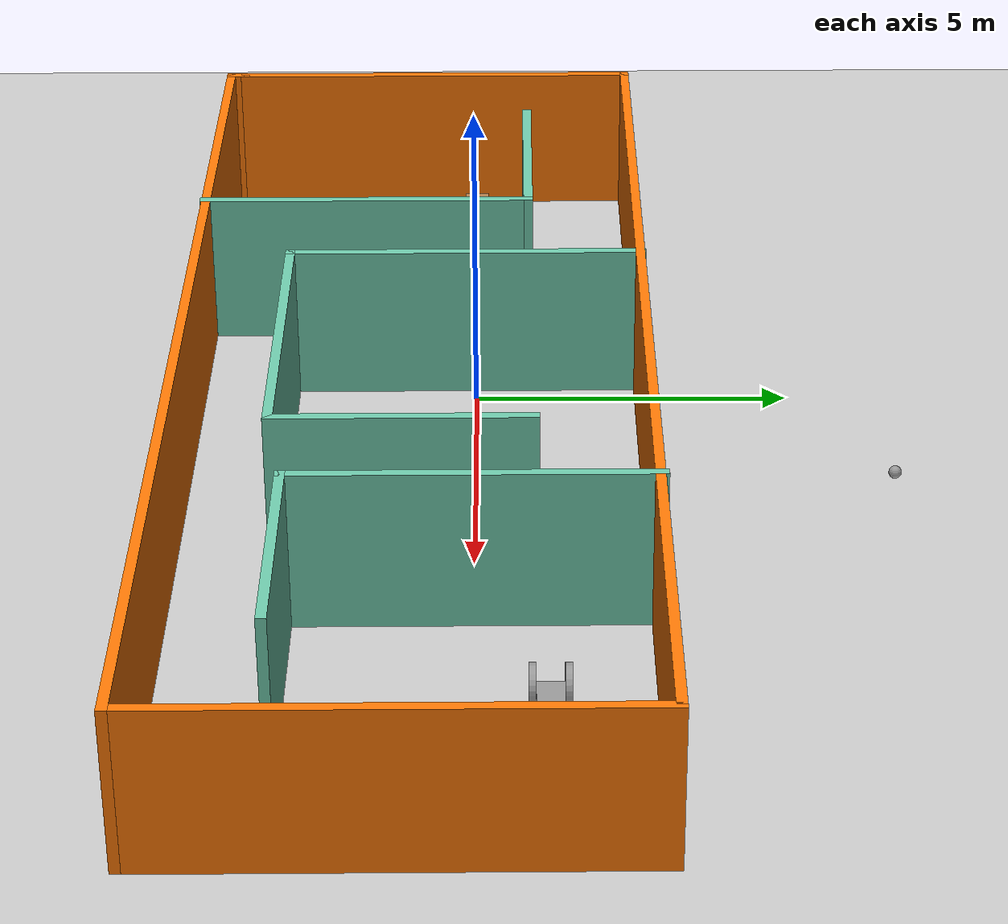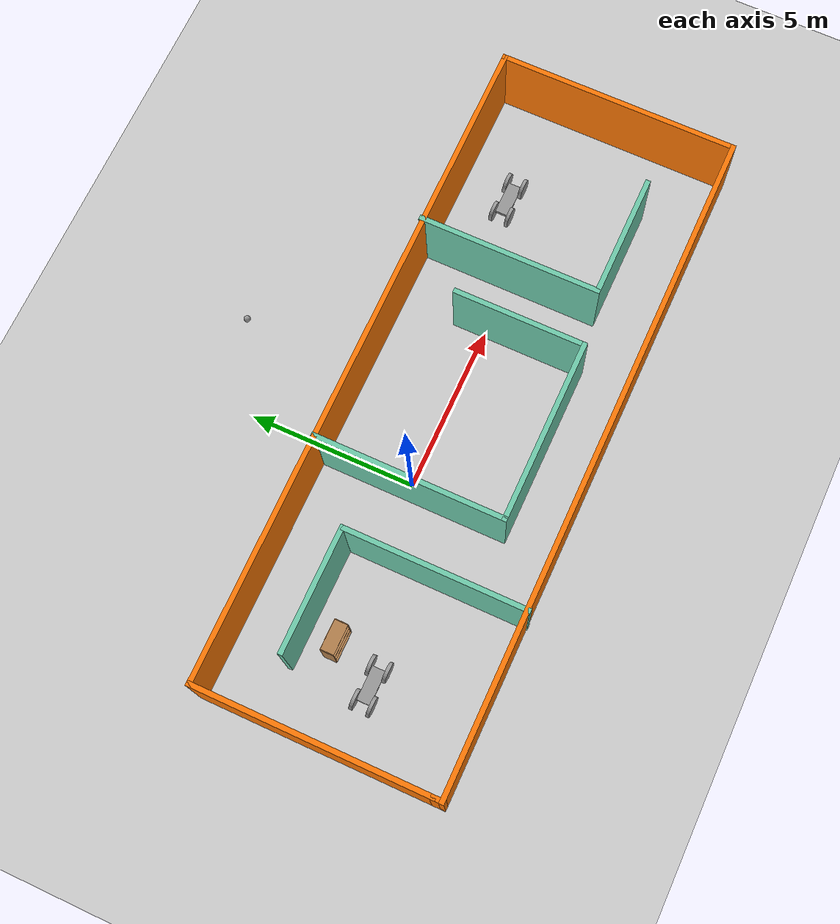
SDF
<sdf version="1.6">
 <world name="default">
  <plugin name="welcome_message" filename="libwelcome_message.so"/>
  <light name="sun" type="directional">
   <pose>0 0 10 0 -0 0</pose>
   <diffuse>0.8 0.8 0.8 1</diffuse>
   <specular>0.2 0.2 0.2 1</specular>
   <attenuation>
    <range>1000</range>
    <constant>0.9</constant>
    <linear>0.01</linear>
    <quadratic>0.001</quadratic>
   </attenuation>
   <direction>-0.5 0.1 -0.9</direction>
  </light>
  <model name="ground_plane">
   <static>1</static>
   <link name="link">
    <collision name="collision">
     <geometry><plane><normal>0 0 1</normal><size>100 100</size></plane></geometry>
     <surface>
      <contact><collide_bitmask>65535</collide_bitmask></contact>
      <friction><ode><mu>100</mu><mu2>50</mu2></ode></friction>
     </surface>
    </collision>
    <visual name="visual">
     <cast_shadows>0</cast_shadows>
     <geometry><plane><normal>0 0 1</normal><size>100 100</size></plane></geometry>
     <material>
      <script><uri>file://media/materials/scripts/gazebo.material</uri><name>Gazebo/Grey</name></script>
     </material>
    </visual>
   </link>
  </model>
  <gravity>0 0 -9.8</gravity>
  <magnetic_field>6e-06 2.3e-05 -4.2e-05</magnetic_field>
  <atmosphere type="adiabatic"/>
  <physics name="default_physics" default="0" type="ode">
   <max_step_size>0.001</max_step_size>
   <real_time_factor>1</real_time_factor>
   <real_time_update_rate>1000</real_time_update_rate>
  </physics>
  <scene><ambient>0.4 0.4 0.4 1</ambient><background>0.7 0.7 0.7 1</background><shadows>1</shadows></scene>
  <spherical_coordinates>
   <surface_model>EARTH_WGS84</surface_model>
   <latitude_deg>0</latitude_deg>
   <longitude_deg>0</longitude_deg>
   <elevation>0</elevation>
   <heading_deg>0</heading_deg>
  </spherical_coordinates>
  <model name="office">
   <pose>2.29778 -0.912092 0 0 -0 0</pose>
   <link name="Wall_0">
    <collision name="Wall_0_Collision">
     <geometry><box><size>7 0.15 2.5</size></box></geometry>
     <pose>0 0 1.25 0 -0 0</pose>
    </collision>
    <visual name="Wall_0_Visual">
     <pose>0 0 1.25 0 -0 0</pose>
     <geometry><box><size>7 0.15 2.5</size></box></geometry>
     <material>
      <script><uri>file://media/materials/scripts/gazebo.material</uri><name>Gazebo/Grey</name></script>
      <ambient>0.996078 0.47451 0.0196078 1</ambient>
     </material>
     <meta><layer>0</layer></meta>
    </visual>
    <pose>-9.925 0.11309 0 0 -0 1.5708</pose>
   </link>
   <link name="Wall_1">
    <collision name="Wall_1_Collision">
     <geometry><box><size>20 0.15 2.5</size></box></geometry>
     <pose>0 0 1.25 0 -0 0</pose>
    </collision>
    <visual name="Wall_1_Visual">
     <pose>0 0 1.25 0 -0 0</pose>
     <geometry><box><size>20 0.15 2.5</size></box></geometry>
     <material>
      <script><uri>file://media/materials/scripts/gazebo.material</uri><name>Gazebo/Grey</name></script>
      <ambient>0.996078 0.47451 0.0196078 1</ambient>
     </material>
     <meta><layer>0</layer></meta>
    </visual>
    <pose>0 3.53809 0 0 -0 0</pose>
   </link>
   <link name="Wall_10">
    <collision name="Wall_10_Collision">
     <geometry><box><size>5.5 0.15 2.5</size></box></geometry>
     <pose>0 0 1.25 0 -0 0</pose>
    </collision>
    <visual name="Wall_10_Visual">
     <pose>0 0 1.25 0 -0 0</pose>
     <geometry><box><size>5.5 0.15 2.5</size></box></geometry>
     <material>
      <script><uri>file://media/materials/scripts/gazebo.material</uri><name>Gazebo/Grey</name></script>
      <ambient>0.435294 0.796078 0.67451 1</ambient>
     </material>
     <meta><layer>0</layer></meta>
    </visual>
    <pose>0.005078 -2.04695 0 0 -0 0</pose>
   </link>
   <link name="Wall_11">
    <collision name="Wall_11_Collision">
     <geometry><box><size>4 0.15 2.5</size></box></geometry>
     <pose>0 0 1.25 0 -0 0</pose>
    </collision>
    <visual name="Wall_11_Visual">
     <pose>0 0 1.25 0 -0 0</pose>
     <geometry><box><size>4 0.15 2.5</size></box></geometry>
     <material>
      <script><uri>file://media/materials/scripts/gazebo.material</uri><name>Gazebo/Grey</name></script>
      <ambient>0.435294 0.796078 0.67451 1</ambient>
     </material>
     <meta><layer>0</layer></meta>
    </visual>
    <pose>2.68008 -0.121945 0 0 -0 1.5708</pose>
   </link>
   <link name="Wall_13">
    <collision name="Wall_13_Collision">
     <geometry><box><size>5.5 0.15 2.5</size></box></geometry>
     <pose>0 0 1.25 0 -0 0</pose>
    </collision>
    <visual name="Wall_13_Visual">
     <pose>0 0 1.25 0 -0 0</pose>
     <geometry><box><size>5.5 0.15 2.5</size></box></geometry>
     <material>
      <script><uri>file://media/materials/scripts/gazebo.material</uri><name>Gazebo/Grey</name></script>
      <ambient>0.435294 0.796078 0.67451 1</ambient>
     </material>
     <meta><layer>0</layer></meta>
    </visual>
    <pose>4.29547 0.913234 0 0 0 -1.5708</pose>
   </link>
   <link name="Wall_14">
    <collision name="Wall_14_Collision">
     <geometry><box><size>3.75 0.15 2.5</size></box></geometry>
     <pose>0 0 1.25 0 -0 0</pose>
    </collision>
    <visual name="Wall_14_Visual">
     <pose>0 0 1.25 0 -0 0</pose>
     <geometry><box><size>3.75 0.15 2.5</size></box></geometry>
     <material>
      <script><uri>file://media/materials/scripts/gazebo.material</uri><name>Gazebo/Grey</name></script>
      <ambient>0.435294 0.796078 0.67451 1</ambient>
     </material>
     <meta><layer>0</layer></meta>
    </visual>
    <pose>6.09547 -1.76177 0 0 -0 0</pose>
   </link>
   <link name="Wall_2">
    <collision name="Wall_2_Collision">
     <geometry><box><size>7.25 0.15 2.5</size></box></geometry>
     <pose>0 0 1.25 0 -0 0</pose>
    </collision>
    <visual name="Wall_2_Visual">
     <pose>0 0 1.25 0 -0 0</pose>
     <geometry><box><size>7.25 0.15 2.5</size></box></geometry>
     <material>
      <script><uri>file://media/materials/scripts/gazebo.material</uri><name>Gazebo/Grey</name></script>
      <ambient>0.996078 0.47451 0.0196078 1</ambient>
     </material>
     <meta><layer>0</layer></meta>
    </visual>
    <pose>9.925 -0.01191 0 0 0 -1.5708</pose>
   </link>
   <link name="Wall_3">
    <collision name="Wall_3_Collision">
     <geometry><box><size>20 0.15 2.5</size></box></geometry>
     <pose>0 0 1.25 0 -0 0</pose>
    </collision>
    <visual name="Wall_3_Visual">
     <pose>0 0 1.25 0 -0 0</pose>
     <geometry><box><size>20 0.15 2.5</size></box></geometry>
     <material>
      <script><uri>file://media/materials/scripts/gazebo.material</uri><name>Gazebo/Grey</name></script>
      <ambient>0.996078 0.47451 0.0196078 1</ambient>
     </material>
     <meta><layer>0</layer></meta>
    </visual>
    <pose>0 -3.56191 0 0 -0 3.14159</pose>
   </link>
   <link name="Wall_4">
    <collision name="Wall_4_Collision">
     <geometry><box><size>0.4 0.15 2.5</size></box></geometry>
     <pose>0 0 1.25 0 -0 0</pose>
    </collision>
    <visual name="Wall_4_Visual">
     <pose>0 0 1.25 0 -0 0</pose>
     <geometry><box><size>0.4 0.15 2.5</size></box></geometry>
     <material>
      <script><uri>file://media/materials/scripts/gazebo.material</uri><name>Gazebo/Grey</name></script>
      <ambient>0.996078 0.47451 0.0196078 1</ambient>
     </material>
     <meta><layer>0</layer></meta>
    </visual>
    <pose>-9.925 -3.43691 0 0 -0 1.5708</pose>
   </link>
   <link name="Wall_6">
    <collision name="Wall_6_Collision">
     <geometry><box><size>5.5 0.15 2.5</size></box></geometry>
     <pose>0 0 1.25 0 -0 0</pose>
    </collision>
    <visual name="Wall_6_Visual">
     <pose>0 0 1.25 0 -0 0</pose>
     <geometry><box><size>5.5 0.15 2.5</size></box></geometry>
     <material>
      <script><uri>file://media/materials/scripts/gazebo.material</uri><name>Gazebo/Grey</name></script>
      <ambient>0.435294 0.796078 0.67451 1</ambient>
     </material>
     <meta><layer>0</layer></meta>
    </visual>
    <pose>-4.63993 -0.913234 0 0 -0 1.5708</pose>
   </link>
   <link name="Wall_7">
    <collision name="Wall_7_Collision">
     <geometry><box><size>3.75 0.15 2.5</size></box></geometry>
     <pose>0 0 1.25 0 -0 0</pose>
    </collision>
    <visual name="Wall_7_Visual">
     <pose>0 0 1.25 0 -0 0</pose>
     <geometry><box><size>3.75 0.15 2.5</size></box></geometry>
     <material>
      <script><uri>file://media/materials/scripts/gazebo.material</uri><name>Gazebo/Grey</name></script>
      <ambient>0.435294 0.796078 0.67451 1</ambient>
     </material>
     <meta><layer>0</layer></meta>
    </visual>
    <pose>-6.43993 1.76177 0 0 -0 3.14159</pose>
   </link>
   <link name="Wall_9">
    <collision name="Wall_9_Collision">
     <geometry><box><size>5.75 0.15 2.5</size></box></geometry>
     <pose>0 0 1.25 0 -0 0</pose>
    </collision>
    <visual name="Wall_9_Visual">
     <pose>0 0 1.25 0 -0 0</pose>
     <geometry><box><size>5.75 0.15 2.5</size></box></geometry>
     <material>
      <script><uri>file://media/materials/scripts/gazebo.material</uri><name>Gazebo/Grey</name></script>
      <ambient>0.435294 0.796078 0.67451 1</ambient>
     </material>
     <meta><layer>0</layer></meta>
    </visual>
    <pose>-2.66992 0.753055 0 0 0 -1.5708</pose>
   </link>
   <static>1</static>
  </model>
  <model name="bookshelf">
   <static>1</static>
   <link name="link">
    <inertial><mass>1</mass></inertial>
    <collision name="back">
     <pose>0 0.005 0.6 0 -0 0</pose>
     <geometry><box><size>0.9 0.01 1.2</size></box></geometry>
    </collision>
    <visual name="visual1">
     <pose>0 0.005 0.6 0 -0 0</pose>
     <geometry><box><size>0.9 0.01 1.2</size></box></geometry>
     <material>
      <script><uri>file://media/materials/scripts/gazebo.material</uri><name>Gazebo/Wood</name></script>
     </material>
    </visual>
    <collision name="left_side">
     <pose>0.45 -0.195 0.6 0 -0 0</pose>
     <geometry><box><size>0.02 0.4 1.2</size></box></geometry>
    </collision>
    <visual name="visual2">
     <pose>0.45 -0.195 0.6 0 -0 0</pose>
     <geometry><box><size>0.02 0.4 1.2</size></box></geometry>
     <material>
      <script><uri>file://media/materials/scripts/gazebo.material</uri><name>Gazebo/Wood</name></script>
     </material>
    </visual>
    <collision name="right_side">
     <pose>-0.45 -0.195 0.6 0 -0 0</pose>
     <geometry><box><size>0.02 0.4 1.2</size></box></geometry>
    </collision>
    <visual name="visual3">
     <pose>-0.45 -0.195 0.6 0 -0 0</pose>
     <geometry><box><size>0.02 0.4 1.2</size></box></geometry>
     <material>
      <script><uri>file://media/materials/scripts/gazebo.material</uri><name>Gazebo/Wood</name></script>
     </material>
    </visual>
    <collision name="bottom">
     <pose>0 -0.195 0.03 0 -0 0</pose>
     <geometry><box><size>0.88 0.4 0.06</size></box></geometry>
    </collision>
    <visual name="visual4">
     <pose>0 -0.195 0.03 0 -0 0</pose>
     <geometry><box><size>0.88 0.4 0.06</size></box></geometry>
     <material>
      <script><uri>file://media/materials/scripts/gazebo.material</uri><name>Gazebo/Wood</name></script>
     </material>
    </visual>
    <collision name="top">
     <pose>0 -0.195 1.19 0 -0 0</pose>
     <geometry><box><size>0.88 0.4 0.02</size></box></geometry>
    </collision>
    <visual name="visual5">
     <pose>0 -0.195 1.19 0 -0 0</pose>
     <geometry><box><size>0.88 0.4 0.02</size></box></geometry>
     <material>
      <script><uri>file://media/materials/scripts/gazebo.material</uri><name>Gazebo/Wood</name></script>
     </material>
    </visual>
    <collision name="low_shelf">
     <pose>0 -0.195 0.43 0 -0 0</pose>
     <geometry><box><size>0.88 0.4 0.02</size></box></geometry>
    </collision>
    <visual name="visual6">
     <pose>0 -0.195 0.43 0 -0 0</pose>
     <geometry><box><size>0.88 0.4 0.02</size></box></geometry>
     <material>
      <script><uri>file://media/materials/scripts/gazebo.material</uri><name>Gazebo/Wood</name></script>
     </material>
    </visual>
    <collision name="high_shelf">
     <pose>0 -0.195 0.8 0 -0 0</pose>
     <geometry><box><size>0.88 0.4 0.02</size></box></geometry>
    </collision>
    <visual name="visual7">
     <pose>0 -0.195 0.8 0 -0 0</pose>
     <geometry><box><size>0.88 0.4 0.02</size></box></geometry>
     <material>
      <script><uri>file://media/materials/scripts/gazebo.material</uri><name>Gazebo/Wood</name></script>
     </material>
    </visual>
   </link>
   <pose>-4.88119 0.168181 0 0 -0 0</pose>
  </model>
  <model name="car_robot">
   <link name="link_0_clone_1">
    <pose>0.5 -0.250029 0 1.5707 -0 0</pose>
    <inertial>
     <mass>1</mass>
     <inertia><ixx>0.145833</ixx><ixy>0</ixy><ixz>0</ixz><iyy>0.145833</iyy><iyz>0</iyz><izz>0.125</izz></inertia>
    </inertial>
    <visual name="visual">
     <geometry><cylinder><radius>0.3</radius><length>0.1</length></cylinder></geometry>
     <material>
      <lighting>1</lighting>
      <script><uri>file://media/materials/scripts/gazebo.material</uri><name>Gazebo/Grey</name></script>
      <shader type="pixel"><normal_map>__default__</normal_map></shader>
      <ambient>0.3 0.3 0.3 1</ambient>
      <diffuse>0.7 0.7 0.7 1</diffuse>
      <specular>0.01 0.01 0.01 1</specular>
      <emissive>0 0 0 1</emissive>
     </material>
    </visual>
    <collision name="collision">
     <geometry><cylinder><radius>0.3</radius><length>0.1</length></cylinder></geometry>
     <surface>
      <friction>
       <ode><mu>1</mu><mu2>1</mu2><fdir1>0 0 0</fdir1><slip1>0</slip1><slip2>0</slip2></ode>
       <torsional>
        <coefficient>1</coefficient>
        <patch_radius>0</patch_radius>
        <surface_radius>0</surface_radius>
        <use_patch_radius>1</use_patch_radius>
        <ode><slip>0</slip></ode>
       </torsional>
      </friction>
      <bounce><restitution_coefficient>0</restitution_coefficient><threshold>1e+06</threshold></bounce>
      <contact>
       <collide_without_contact>0</collide_without_contact>
       <collide_without_contact_bitmask>1</collide_without_contact_bitmask>
       <collide_bitmask>1</collide_bitmask>
       <ode>
        <soft_cfm>0</soft_cfm>
        <soft_erp>0.2</soft_erp>
        <kp>1e+13</kp>
        <kd>1</kd>
        <max_vel>0.01</max_vel>
        <min_depth>0</min_depth>
       </ode>
       <bullet>
        <split_impulse>1</split_impulse>
        <split_impulse_penetration_threshold>-0.01</split_impulse_penetration_threshold>
        <soft_cfm>0</soft_cfm>
        <soft_erp>0.2</soft_erp>
        <kp>1e+13</kp>
        <kd>1</kd>
       </bullet>
      </contact>
     </surface>
    </collision>
   </link>
   <link name="link_0_clone_1_clone">
    <pose>0.5 0.250028 0 1.5707 -0 0</pose>
    <inertial>
     <mass>1</mass>
     <inertia><ixx>0.145833</ixx><ixy>0</ixy><ixz>0</ixz><iyy>0.145833</iyy><iyz>0</iyz><izz>0.125</izz></inertia>
    </inertial>
    <visual name="visual">
     <geometry><cylinder><radius>0.3</radius><length>0.1</length></cylinder></geometry>
     <material>
      <lighting>1</lighting>
      <script><uri>file://media/materials/scripts/gazebo.material</uri><name>Gazebo/Grey</name></script>
      <shader type="pixel"><normal_map>__default__</normal_map></shader>
      <ambient>0.3 0.3 0.3 1</ambient>
      <diffuse>0.7 0.7 0.7 1</diffuse>
      <specular>0.01 0.01 0.01 1</specular>
      <emissive>0 0 0 1</emissive>
     </material>
    </visual>
    <collision name="collision">
     <geometry><cylinder><radius>0.3</radius><length>0.1</length></cylinder></geometry>
     <surface>
      <friction>
       <ode><mu>1</mu><mu2>1</mu2><fdir1>0 0 0</fdir1><slip1>0</slip1><slip2>0</slip2></ode>
       <torsional>
        <coefficient>1</coefficient>
        <patch_radius>0</patch_radius>
        <surface_radius>0</surface_radius>
        <use_patch_radius>1</use_patch_radius>
        <ode><slip>0</slip></ode>
       </torsional>
      </friction>
      <bounce><restitution_coefficient>0</restitution_coefficient><threshold>1e+06</threshold></bounce>
      <contact>
       <collide_without_contact>0</collide_without_contact>
       <collide_without_contact_bitmask>1</collide_without_contact_bitmask>
       <collide_bitmask>1</collide_bitmask>
       <ode>
        <soft_cfm>0</soft_cfm>
        <soft_erp>0.2</soft_erp>
        <kp>1e+13</kp>
        <kd>1</kd>
        <max_vel>0.01</max_vel>
        <min_depth>0</min_depth>
       </ode>
       <bullet>
        <split_impulse>1</split_impulse>
        <split_impulse_penetration_threshold>-0.01</split_impulse_penetration_threshold>
        <soft_cfm>0</soft_cfm>
        <soft_erp>0.2</soft_erp>
        <kp>1e+13</kp>
        <kd>1</kd>
       </bullet>
      </contact>
     </surface>
    </collision>
   </link>
   <link name="link_0_clone_1_clone_clone">
    <pose>-0.5 0.250028 0 1.5707 -0 0</pose>
    <inertial>
     <mass>1</mass>
     <inertia><ixx>0.145833</ixx><ixy>0</ixy><ixz>0</ixz><iyy>0.145833</iyy><iyz>0</iyz><izz>0.125</izz></inertia>
    </inertial>
    <visual name="visual">
     <geometry><cylinder><radius>0.3</radius><length>0.1</length></cylinder></geometry>
     <material>
      <lighting>1</lighting>
      <script><uri>file://media/materials/scripts/gazebo.material</uri><name>Gazebo/Grey</name></script>
      <shader type="pixel"><normal_map>__default__</normal_map></shader>
      <ambient>0.3 0.3 0.3 1</ambient>
      <diffuse>0.7 0.7 0.7 1</diffuse>
      <specular>0.01 0.01 0.01 1</specular>
      <emissive>0 0 0 1</emissive>
     </material>
    </visual>
    <collision name="collision">
     <geometry><cylinder><radius>0.3</radius><length>0.1</length></cylinder></geometry>
     <surface>
      <friction>
       <ode><mu>1</mu><mu2>1</mu2><fdir1>0 0 0</fdir1><slip1>0</slip1><slip2>0</slip2></ode>
       <torsional>
        <coefficient>1</coefficient>
        <patch_radius>0</patch_radius>
        <surface_radius>0</surface_radius>
        <use_patch_radius>1</use_patch_radius>
        <ode><slip>0</slip></ode>
       </torsional>
      </friction>
      <bounce><restitution_coefficient>0</restitution_coefficient><threshold>1e+06</threshold></bounce>
      <contact>
       <collide_without_contact>0</collide_without_contact>
       <collide_without_contact_bitmask>1</collide_without_contact_bitmask>
       <collide_bitmask>1</collide_bitmask>
       <ode>
        <soft_cfm>0</soft_cfm>
        <soft_erp>0.2</soft_erp>
        <kp>1e+13</kp>
        <kd>1</kd>
        <max_vel>0.01</max_vel>
        <min_depth>0</min_depth>
       </ode>
       <bullet>
        <split_impulse>1</split_impulse>
        <split_impulse_penetration_threshold>-0.01</split_impulse_penetration_threshold>
        <soft_cfm>0</soft_cfm>
        <soft_erp>0.2</soft_erp>
        <kp>1e+13</kp>
        <kd>1</kd>
       </bullet>
      </contact>
     </surface>
    </collision>
   </link>
   <link name="link_0_clone_1_clone_clone_0">
    <pose>-0.5 -0.250029 0 1.5707 -0 0</pose>
    <inertial>
     <mass>1</mass>
     <inertia><ixx>0.145833</ixx><ixy>0</ixy><ixz>0</ixz><iyy>0.145833</iyy><iyz>0</iyz><izz>0.125</izz></inertia>
    </inertial>
    <visual name="visual">
     <geometry><cylinder><radius>0.3</radius><length>0.1</length></cylinder></geometry>
     <material>
      <lighting>1</lighting>
      <script><uri>file://media/materials/scripts/gazebo.material</uri><name>Gazebo/Grey</name></script>
      <shader type="pixel"><normal_map>__default__</normal_map></shader>
      <ambient>0.3 0.3 0.3 1</ambient>
      <diffuse>0.7 0.7 0.7 1</diffuse>
      <specular>0.01 0.01 0.01 1</specular>
      <emissive>0 0 0 1</emissive>
     </material>
    </visual>
    <collision name="collision">
     <geometry><cylinder><radius>0.3</radius><length>0.1</length></cylinder></geometry>
     <surface>
      <friction>
       <ode><mu>1</mu><mu2>1</mu2><fdir1>0 0 0</fdir1><slip1>0</slip1><slip2>0</slip2></ode>
       <torsional>
        <coefficient>1</coefficient>
        <patch_radius>0</patch_radius>
        <surface_radius>0</surface_radius>
        <use_patch_radius>1</use_patch_radius>
        <ode><slip>0</slip></ode>
       </torsional>
      </friction>
      <bounce><restitution_coefficient>0</restitution_coefficient><threshold>1e+06</threshold></bounce>
      <contact>
       <collide_without_contact>0</collide_without_contact>
       <collide_without_contact_bitmask>1</collide_without_contact_bitmask>
       <collide_bitmask>1</collide_bitmask>
       <ode>
        <soft_cfm>0</soft_cfm>
        <soft_erp>0.2</soft_erp>
        <kp>1e+13</kp>
        <kd>1</kd>
        <max_vel>0.01</max_vel>
        <min_depth>0</min_depth>
       </ode>
       <bullet>
        <split_impulse>1</split_impulse>
        <split_impulse_penetration_threshold>-0.01</split_impulse_penetration_threshold>
        <soft_cfm>0</soft_cfm>
        <soft_erp>0.2</soft_erp>
        <kp>1e+13</kp>
        <kd>1</kd>
       </bullet>
      </contact>
     </surface>
    </collision>
   </link>
   <link name="link_1">
    <inertial>
     <mass>1</mass>
     <inertia>
      <ixx>0.166667</ixx>
      <ixy>0</ixy>
      <ixz>0</ixz>
      <iyy>0.166667</iyy>
      <iyz>0</iyz>
      <izz>0.166667</izz>
     </inertia>
    </inertial>
    <visual name="visual">
     <geometry><box><size>1 0.4 0.1</size></box></geometry>
     <material>
      <lighting>1</lighting>
      <script><uri>file://media/materials/scripts/gazebo.material</uri><name>Gazebo/Grey</name></script>
      <shader type="pixel"><normal_map>__default__</normal_map></shader>
      <ambient>0.3 0.3 0.3 1</ambient>
      <diffuse>0.7 0.7 0.7 1</diffuse>
      <specular>0.01 0.01 0.01 1</specular>
      <emissive>0 0 0 1</emissive>
     </material>
    </visual>
    <collision name="collision">
     <geometry><box><size>1 0.4 0.1</size></box></geometry>
     <surface>
      <friction>
       <ode><mu>1</mu><mu2>1</mu2><fdir1>0 0 0</fdir1><slip1>0</slip1><slip2>0</slip2></ode>
       <torsional>
        <coefficient>1</coefficient>
        <patch_radius>0</patch_radius>
        <surface_radius>0</surface_radius>
        <use_patch_radius>1</use_patch_radius>
        <ode><slip>0</slip></ode>
       </torsional>
      </friction>
      <bounce><restitution_coefficient>0</restitution_coefficient><threshold>1e+06</threshold></bounce>
      <contact>
       <collide_without_contact>0</collide_without_contact>
       <collide_without_contact_bitmask>1</collide_without_contact_bitmask>
       <collide_bitmask>1</collide_bitmask>
       <ode>
        <soft_cfm>0</soft_cfm>
        <soft_erp>0.2</soft_erp>
        <kp>1e+13</kp>
        <kd>1</kd>
        <max_vel>0.01</max_vel>
        <min_depth>0</min_depth>
       </ode>
       <bullet>
        <split_impulse>1</split_impulse>
        <split_impulse_penetration_threshold>-0.01</split_impulse_penetration_threshold>
        <soft_cfm>0</soft_cfm>
        <soft_erp>0.2</soft_erp>
        <kp>1e+13</kp>
        <kd>1</kd>
       </bullet>
      </contact>
     </surface>
    </collision>
   </link>
   <joint name="link_1_JOINT_0" type="revolute">
    <parent>link_1</parent>
    <child>link_0_clone_1</child>
    <axis>
     <xyz>0 0 1</xyz>
     <use_parent_model_frame>0</use_parent_model_frame>
     <limit>
      <lower>-1.79769e+308</lower>
      <upper>1.79769e+308</upper>
      <effort>-1</effort>
      <velocity>-1</velocity>
     </limit>
     <dynamics>
      <spring_reference>0</spring_reference>
      <spring_stiffness>0</spring_stiffness>
      <damping>0</damping>
     </dynamics>
    </axis>
    <physics>
     <ode><limit><cfm>0</cfm><erp>0.2</erp></limit><suspension><cfm>0</cfm><erp>0.2</erp></suspension></ode>
    </physics>
   </joint>
   <joint name="link_1_JOINT_1" type="revolute">
    <parent>link_1</parent>
    <child>link_0_clone_1_clone</child>
    <axis>
     <xyz>0 0 1</xyz>
     <use_parent_model_frame>0</use_parent_model_frame>
     <limit>
      <lower>-1.79769e+308</lower>
      <upper>1.79769e+308</upper>
      <effort>-1</effort>
      <velocity>-1</velocity>
     </limit>
     <dynamics>
      <spring_reference>0</spring_reference>
      <spring_stiffness>0</spring_stiffness>
      <damping>0</damping>
     </dynamics>
    </axis>
    <physics>
     <ode><limit><cfm>0</cfm><erp>0.2</erp></limit><suspension><cfm>0</cfm><erp>0.2</erp></suspension></ode>
    </physics>
   </joint>
   <joint name="link_1_JOINT_2" type="revolute">
    <parent>link_1</parent>
    <child>link_0_clone_1_clone_clone_0</child>
    <axis>
     <xyz>0 0 1</xyz>
     <use_parent_model_frame>0</use_parent_model_frame>
     <limit>
      <lower>-1.79769e+308</lower>
      <upper>1.79769e+308</upper>
      <effort>-1</effort>
      <velocity>-1</velocity>
     </limit>
     <dynamics>
      <spring_reference>0</spring_reference>
      <spring_stiffness>0</spring_stiffness>
      <damping>0</damping>
     </dynamics>
    </axis>
    <physics>
     <ode><limit><cfm>0</cfm><erp>0.2</erp></limit><suspension><cfm>0</cfm><erp>0.2</erp></suspension></ode>
    </physics>
   </joint>
   <joint name="link_1_JOINT_3" type="revolute">
    <parent>link_1</parent>
    <child>link_0_clone_1_clone_clone</child>
    <axis>
     <xyz>0 0 1</xyz>
     <use_parent_model_frame>0</use_parent_model_frame>
     <limit>
      <lower>-1.79769e+308</lower>
      <upper>1.79769e+308</upper>
      <effort>-1</effort>
      <velocity>-1</velocity>
     </limit>
     <dynamics>
      <spring_reference>0</spring_reference>
      <spring_stiffness>0</spring_stiffness>
      <damping>0</damping>
     </dynamics>
    </axis>
    <physics>
     <ode><limit><cfm>0</cfm><erp>0.2</erp></limit><suspension><cfm>0</cfm><erp>0.2</erp></suspension></ode>
    </physics>
   </joint>
   <static>0</static>
   <pose>9.07122 1.07351 0.299046 1e-06 -0.001919 0.000396</pose>
  </model>
  <model name="car_robot_0">
   <link name="link_0_clone_1">
    <pose>0.5 -0.250029 0 1.5707 -0 0</pose>
    <inertial>
     <mass>1</mass>
     <inertia><ixx>0.145833</ixx><ixy>0</ixy><ixz>0</ixz><iyy>0.145833</iyy><iyz>0</iyz><izz>0.125</izz></inertia>
    </inertial>
    <visual name="visual">
     <geometry><cylinder><radius>0.3</radius><length>0.1</length></cylinder></geometry>
     <material>
      <lighting>1</lighting>
      <script><uri>file://media/materials/scripts/gazebo.material</uri><name>Gazebo/Grey</name></script>
      <shader type="pixel"><normal_map>__default__</normal_map></shader>
      <ambient>0.3 0.3 0.3 1</ambient>
      <diffuse>0.7 0.7 0.7 1</diffuse>
      <specular>0.01 0.01 0.01 1</specular>
      <emissive>0 0 0 1</emissive>
     </material>
    </visual>
    <collision name="collision">
     <geometry><cylinder><radius>0.3</radius><length>0.1</length></cylinder></geometry>
     <surface>
      <friction>
       <ode><mu>1</mu><mu2>1</mu2><fdir1>0 0 0</fdir1><slip1>0</slip1><slip2>0</slip2></ode>
       <torsional>
        <coefficient>1</coefficient>
        <patch_radius>0</patch_radius>
        <surface_radius>0</surface_radius>
        <use_patch_radius>1</use_patch_radius>
        <ode><slip>0</slip></ode>
       </torsional>
      </friction>
      <bounce><restitution_coefficient>0</restitution_coefficient><threshold>1e+06</threshold></bounce>
      <contact>
       <collide_without_contact>0</collide_without_contact>
       <collide_without_contact_bitmask>1</collide_without_contact_bitmask>
       <collide_bitmask>1</collide_bitmask>
       <ode>
        <soft_cfm>0</soft_cfm>
        <soft_erp>0.2</soft_erp>
        <kp>1e+13</kp>
        <kd>1</kd>
        <max_vel>0.01</max_vel>
        <min_depth>0</min_depth>
       </ode>
       <bullet>
        <split_impulse>1</split_impulse>
        <split_impulse_penetration_threshold>-0.01</split_impulse_penetration_threshold>
        <soft_cfm>0</soft_cfm>
        <soft_erp>0.2</soft_erp>
        <kp>1e+13</kp>
        <kd>1</kd>
       </bullet>
      </contact>
     </surface>
    </collision>
   </link>
   <link name="link_0_clone_1_clone">
    <pose>0.5 0.250028 0 1.5707 -0 0</pose>
    <inertial>
     <mass>1</mass>
     <inertia><ixx>0.145833</ixx><ixy>0</ixy><ixz>0</ixz><iyy>0.145833</iyy><iyz>0</iyz><izz>0.125</izz></inertia>
    </inertial>
    <visual name="visual">
     <geometry><cylinder><radius>0.3</radius><length>0.1</length></cylinder></geometry>
     <material>
      <lighting>1</lighting>
      <script><uri>file://media/materials/scripts/gazebo.material</uri><name>Gazebo/Grey</name></script>
      <shader type="pixel"><normal_map>__default__</normal_map></shader>
      <ambient>0.3 0.3 0.3 1</ambient>
      <diffuse>0.7 0.7 0.7 1</diffuse>
      <specular>0.01 0.01 0.01 1</specular>
      <emissive>0 0 0 1</emissive>
     </material>
    </visual>
    <collision name="collision">
     <geometry><cylinder><radius>0.3</radius><length>0.1</length></cylinder></geometry>
     <surface>
      <friction>
       <ode><mu>1</mu><mu2>1</mu2><fdir1>0 0 0</fdir1><slip1>0</slip1><slip2>0</slip2></ode>
       <torsional>
        <coefficient>1</coefficient>
        <patch_radius>0</patch_radius>
        <surface_radius>0</surface_radius>
        <use_patch_radius>1</use_patch_radius>
        <ode><slip>0</slip></ode>
       </torsional>
      </friction>
      <bounce><restitution_coefficient>0</restitution_coefficient><threshold>1e+06</threshold></bounce>
      <contact>
       <collide_without_contact>0</collide_without_contact>
       <collide_without_contact_bitmask>1</collide_without_contact_bitmask>
       <collide_bitmask>1</collide_bitmask>
       <ode>
        <soft_cfm>0</soft_cfm>
        <soft_erp>0.2</soft_erp>
        <kp>1e+13</kp>
        <kd>1</kd>
        <max_vel>0.01</max_vel>
        <min_depth>0</min_depth>
       </ode>
       <bullet>
        <split_impulse>1</split_impulse>
        <split_impulse_penetration_threshold>-0.01</split_impulse_penetration_threshold>
        <soft_cfm>0</soft_cfm>
        <soft_erp>0.2</soft_erp>
        <kp>1e+13</kp>
        <kd>1</kd>
       </bullet>
      </contact>
     </surface>
    </collision>
   </link>
   <link name="link_0_clone_1_clone_clone">
    <pose>-0.5 0.250028 0 1.5707 -0 0</pose>
    <inertial>
     <mass>1</mass>
     <inertia><ixx>0.145833</ixx><ixy>0</ixy><ixz>0</ixz><iyy>0.145833</iyy><iyz>0</iyz><izz>0.125</izz></inertia>
    </inertial>
    <visual name="visual">
     <geometry><cylinder><radius>0.3</radius><length>0.1</length></cylinder></geometry>
     <material>
      <lighting>1</lighting>
      <script><uri>file://media/materials/scripts/gazebo.material</uri><name>Gazebo/Grey</name></script>
      <shader type="pixel"><normal_map>__default__</normal_map></shader>
      <ambient>0.3 0.3 0.3 1</ambient>
      <diffuse>0.7 0.7 0.7 1</diffuse>
      <specular>0.01 0.01 0.01 1</specular>
      <emissive>0 0 0 1</emissive>
     </material>
    </visual>
    <collision name="collision">
     <geometry><cylinder><radius>0.3</radius><length>0.1</length></cylinder></geometry>
     <surface>
      <friction>
       <ode><mu>1</mu><mu2>1</mu2><fdir1>0 0 0</fdir1><slip1>0</slip1><slip2>0</slip2></ode>
       <torsional>
        <coefficient>1</coefficient>
        <patch_radius>0</patch_radius>
        <surface_radius>0</surface_radius>
        <use_patch_radius>1</use_patch_radius>
        <ode><slip>0</slip></ode>
       </torsional>
      </friction>
      <bounce><restitution_coefficient>0</restitution_coefficient><threshold>1e+06</threshold></bounce>
      <contact>
       <collide_without_contact>0</collide_without_contact>
       <collide_without_contact_bitmask>1</collide_without_contact_bitmask>
       <collide_bitmask>1</collide_bitmask>
       <ode>
        <soft_cfm>0</soft_cfm>
        <soft_erp>0.2</soft_erp>
        <kp>1e+13</kp>
        <kd>1</kd>
        <max_vel>0.01</max_vel>
        <min_depth>0</min_depth>
       </ode>
       <bullet>
        <split_impulse>1</split_impulse>
        <split_impulse_penetration_threshold>-0.01</split_impulse_penetration_threshold>
        <soft_cfm>0</soft_cfm>
        <soft_erp>0.2</soft_erp>
        <kp>1e+13</kp>
        <kd>1</kd>
       </bullet>
      </contact>
     </surface>
    </collision>
   </link>
   <link name="link_0_clone_1_clone_clone_0">
    <pose>-0.5 -0.250029 0 1.5707 -0 0</pose>
    <inertial>
     <mass>1</mass>
     <inertia><ixx>0.145833</ixx><ixy>0</ixy><ixz>0</ixz><iyy>0.145833</iyy><iyz>0</iyz><izz>0.125</izz></inertia>
    </inertial>
    <visual name="visual">
     <geometry><cylinder><radius>0.3</radius><length>0.1</length></cylinder></geometry>
     <material>
      <lighting>1</lighting>
      <script><uri>file://media/materials/scripts/gazebo.material</uri><name>Gazebo/Grey</name></script>
      <shader type="pixel"><normal_map>__default__</normal_map></shader>
      <ambient>0.3 0.3 0.3 1</ambient>
      <diffuse>0.7 0.7 0.7 1</diffuse>
      <specular>0.01 0.01 0.01 1</specular>
      <emissive>0 0 0 1</emissive>
     </material>
    </visual>
    <collision name="collision">
     <geometry><cylinder><radius>0.3</radius><length>0.1</length></cylinder></geometry>
     <surface>
      <friction>
       <ode><mu>1</mu><mu2>1</mu2><fdir1>0 0 0</fdir1><slip1>0</slip1><slip2>0</slip2></ode>
       <torsional>
        <coefficient>1</coefficient>
        <patch_radius>0</patch_radius>
        <surface_radius>0</surface_radius>
        <use_patch_radius>1</use_patch_radius>
        <ode><slip>0</slip></ode>
       </torsional>
      </friction>
      <bounce><restitution_coefficient>0</restitution_coefficient><threshold>1e+06</threshold></bounce>
      <contact>
       <collide_without_contact>0</collide_without_contact>
       <collide_without_contact_bitmask>1</collide_without_contact_bitmask>
       <collide_bitmask>1</collide_bitmask>
       <ode>
        <soft_cfm>0</soft_cfm>
        <soft_erp>0.2</soft_erp>
        <kp>1e+13</kp>
        <kd>1</kd>
        <max_vel>0.01</max_vel>
        <min_depth>0</min_depth>
       </ode>
       <bullet>
        <split_impulse>1</split_impulse>
        <split_impulse_penetration_threshold>-0.01</split_impulse_penetration_threshold>
        <soft_cfm>0</soft_cfm>
        <soft_erp>0.2</soft_erp>
        <kp>1e+13</kp>
        <kd>1</kd>
       </bullet>
      </contact>
     </surface>
    </collision>
   </link>
   <link name="link_1">
    <inertial>
     <mass>1</mass>
     <inertia>
      <ixx>0.166667</ixx>
      <ixy>0</ixy>
      <ixz>0</ixz>
      <iyy>0.166667</iyy>
      <iyz>0</iyz>
      <izz>0.166667</izz>
     </inertia>
    </inertial>
    <visual name="visual">
     <geometry><box><size>1 0.4 0.1</size></box></geometry>
     <material>
      <lighting>1</lighting>
      <script><uri>file://media/materials/scripts/gazebo.material</uri><name>Gazebo/Grey</name></script>
      <shader type="pixel"><normal_map>__default__</normal_map></shader>
      <ambient>0.3 0.3 0.3 1</ambient>
      <diffuse>0.7 0.7 0.7 1</diffuse>
      <specular>0.01 0.01 0.01 1</specular>
      <emissive>0 0 0 1</emissive>
     </material>
    </visual>
    <collision name="collision">
     <geometry><box><size>1 0.4 0.1</size></box></geometry>
     <surface>
      <friction>
       <ode><mu>1</mu><mu2>1</mu2><fdir1>0 0 0</fdir1><slip1>0</slip1><slip2>0</slip2></ode>
       <torsional>
        <coefficient>1</coefficient>
        <patch_radius>0</patch_radius>
        <surface_radius>0</surface_radius>
        <use_patch_radius>1</use_patch_radius>
        <ode><slip>0</slip></ode>
       </torsional>
      </friction>
      <bounce><restitution_coefficient>0</restitution_coefficient><threshold>1e+06</threshold></bounce>
      <contact>
       <collide_without_contact>0</collide_without_contact>
       <collide_without_contact_bitmask>1</collide_without_contact_bitmask>
       <collide_bitmask>1</collide_bitmask>
       <ode>
        <soft_cfm>0</soft_cfm>
        <soft_erp>0.2</soft_erp>
        <kp>1e+13</kp>
        <kd>1</kd>
        <max_vel>0.01</max_vel>
        <min_depth>0</min_depth>
       </ode>
       <bullet>
        <split_impulse>1</split_impulse>
        <split_impulse_penetration_threshold>-0.01</split_impulse_penetration_threshold>
        <soft_cfm>0</soft_cfm>
        <soft_erp>0.2</soft_erp>
        <kp>1e+13</kp>
        <kd>1</kd>
       </bullet>
      </contact>
     </surface>
    </collision>
   </link>
   <joint name="link_1_JOINT_0" type="revolute">
    <parent>link_1</parent>
    <child>link_0_clone_1</child>
    <axis>
     <xyz>0 0 1</xyz>
     <use_parent_model_frame>0</use_parent_model_frame>
     <limit>
      <lower>-1.79769e+308</lower>
      <upper>1.79769e+308</upper>
      <effort>-1</effort>
      <velocity>-1</velocity>
     </limit>
     <dynamics>
      <spring_reference>0</spring_reference>
      <spring_stiffness>0</spring_stiffness>
      <damping>0</damping>
     </dynamics>
    </axis>
    <physics>
     <ode><limit><cfm>0</cfm><erp>0.2</erp></limit><suspension><cfm>0</cfm><erp>0.2</erp></suspension></ode>
    </physics>
   </joint>
   <joint name="link_1_JOINT_1" type="revolute">
    <parent>link_1</parent>
    <child>link_0_clone_1_clone</child>
    <axis>
     <xyz>0 0 1</xyz>
     <use_parent_model_frame>0</use_parent_model_frame>
     <limit>
      <lower>-1.79769e+308</lower>
      <upper>1.79769e+308</upper>
      <effort>-1</effort>
      <velocity>-1</velocity>
     </limit>
     <dynamics>
      <spring_reference>0</spring_reference>
      <spring_stiffness>0</spring_stiffness>
      <damping>0</damping>
     </dynamics>
    </axis>
    <physics>
     <ode><limit><cfm>0</cfm><erp>0.2</erp></limit><suspension><cfm>0</cfm><erp>0.2</erp></suspension></ode>
    </physics>
   </joint>
   <joint name="link_1_JOINT_2" type="revolute">
    <parent>link_1</parent>
    <child>link_0_clone_1_clone_clone_0</child>
    <axis>
     <xyz>0 0 1</xyz>
     <use_parent_model_frame>0</use_parent_model_frame>
     <limit>
      <lower>-1.79769e+308</lower>
      <upper>1.79769e+308</upper>
      <effort>-1</effort>
      <velocity>-1</velocity>
     </limit>
     <dynamics>
      <spring_reference>0</spring_reference>
      <spring_stiffness>0</spring_stiffness>
      <damping>0</damping>
     </dynamics>
    </axis>
    <physics>
     <ode><limit><cfm>0</cfm><erp>0.2</erp></limit><suspension><cfm>0</cfm><erp>0.2</erp></suspension></ode>
    </physics>
   </joint>
   <joint name="link_1_JOINT_3" type="revolute">
    <parent>link_1</parent>
    <child>link_0_clone_1_clone_clone</child>
    <axis>
     <xyz>0 0 1</xyz>
     <use_parent_model_frame>0</use_parent_model_frame>
     <limit>
      <lower>-1.79769e+308</lower>
      <upper>1.79769e+308</upper>
      <effort>-1</effort>
      <velocity>-1</velocity>
     </limit>
     <dynamics>
      <spring_reference>0</spring_reference>
      <spring_stiffness>0</spring_stiffness>
      <damping>0</damping>
     </dynamics>
    </axis>
    <physics>
     <ode><limit><cfm>0</cfm><erp>0.2</erp></limit><suspension><cfm>0</cfm><erp>0.2</erp></suspension></ode>
    </physics>
   </joint>
   <static>0</static>
   <pose>-5.55012 -1.37588 0.300697 -0 0.001385 0.000726</pose>
  </model>
  <model name="my_ball">
   <link name="link_0">
    <inertial>
     <mass>1</mass>
     <inertia><ixx>0.1</ixx><ixy>0</ixy><ixz>0</ixz><iyy>0.1</iyy><iyz>0</iyz><izz>0.1</izz></inertia>
    </inertial>
    <visual name="visual">
     <geometry><sphere><radius>0.1</radius></sphere></geometry>
     <material>
      <lighting>1</lighting>
      <script><uri>file://media/materials/scripts/gazebo.material</uri><name>Gazebo/Grey</name></script>
      <shader type="pixel"><normal_map>__default__</normal_map></shader>
      <ambient>1 1 1 1</ambient>
      <diffuse>1 1 1 1</diffuse>
      <specular>1 1 1 1</specular>
      <emissive>1 1 1 1</emissive>
     </material>
    </visual>
    <collision name="collision">
     <geometry><sphere><radius>0.1</radius></sphere></geometry>
     <surface>
      <friction>
       <ode><mu>1</mu><mu2>1</mu2><fdir1>0 0 0</fdir1><slip1>0</slip1><slip2>0</slip2></ode>
       <torsional>
        <coefficient>1</coefficient>
        <patch_radius>0</patch_radius>
        <surface_radius>0</surface_radius>
        <use_patch_radius>1</use_patch_radius>
        <ode><slip>0</slip></ode>
       </torsional>
      </friction>
      <bounce><restitution_coefficient>0</restitution_coefficient><threshold>1e+06</threshold></bounce>
      <contact>
       <collide_without_contact>0</collide_without_contact>
       <collide_without_contact_bitmask>1</collide_without_contact_bitmask>
       <collide_bitmask>1</collide_bitmask>
       <ode>
        <soft_cfm>0</soft_cfm>
        <soft_erp>0.2</soft_erp>
        <kp>1e+13</kp>
        <kd>1</kd>
        <max_vel>0.01</max_vel>
        <min_depth>0</min_depth>
       </ode>
       <bullet>
        <split_impulse>1</split_impulse>
        <split_impulse_penetration_threshold>-0.01</split_impulse_penetration_threshold>
        <soft_cfm>0</soft_cfm>
        <soft_erp>0.2</soft_erp>
        <kp>1e+13</kp>
        <kd>1</kd>
       </bullet>
      </contact>
     </surface>
    </collision>
   </link>
   <static>0</static>
   <pose>2.56898 6.49514 0.1 0 -0 0</pose>
  </model>
 </world>
</sdf>
